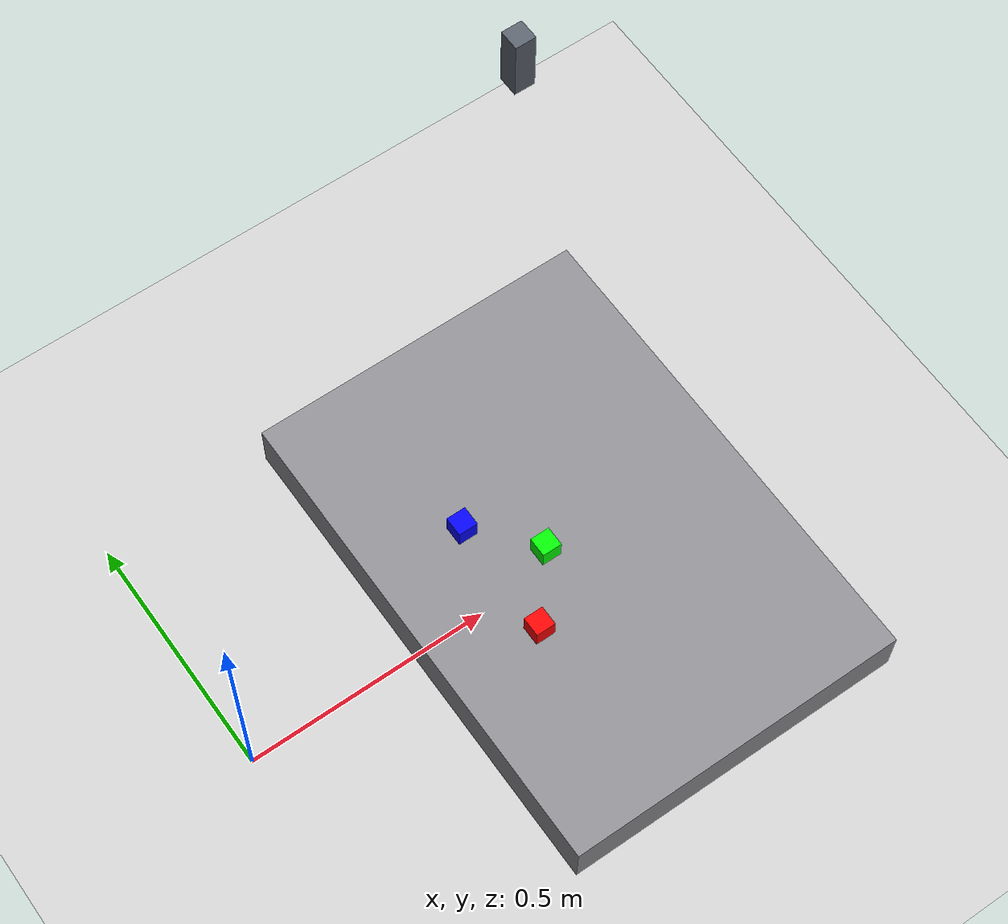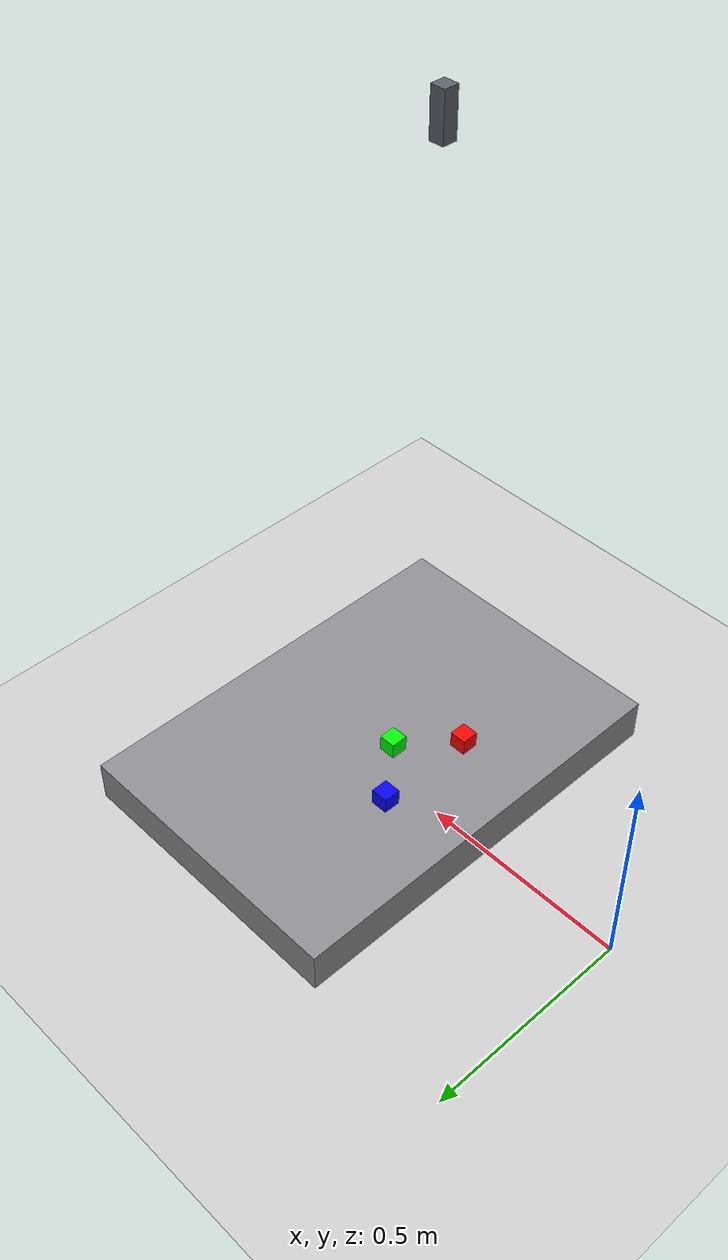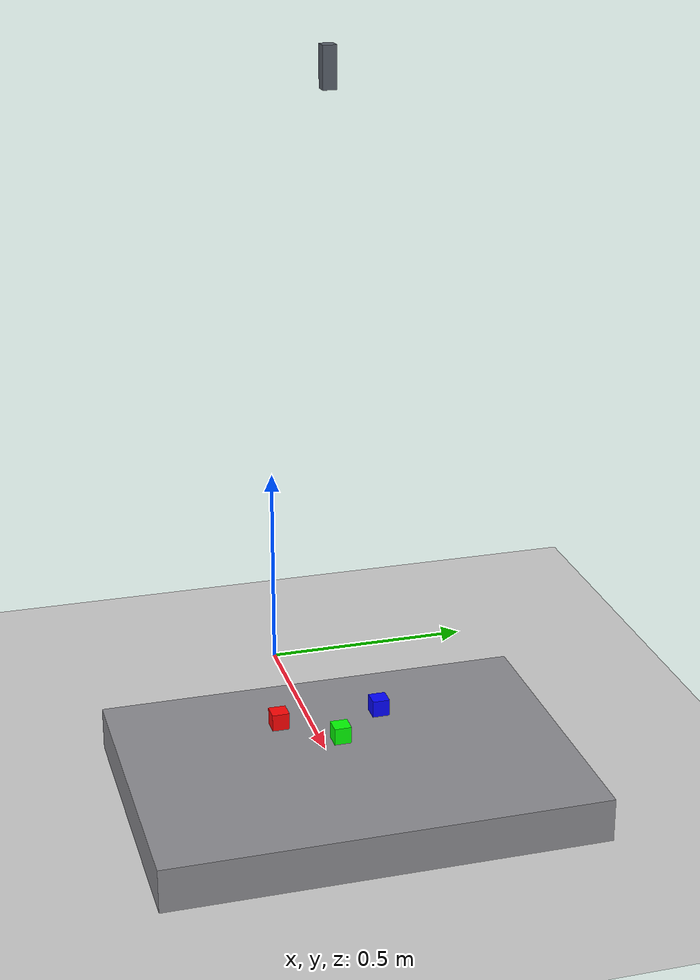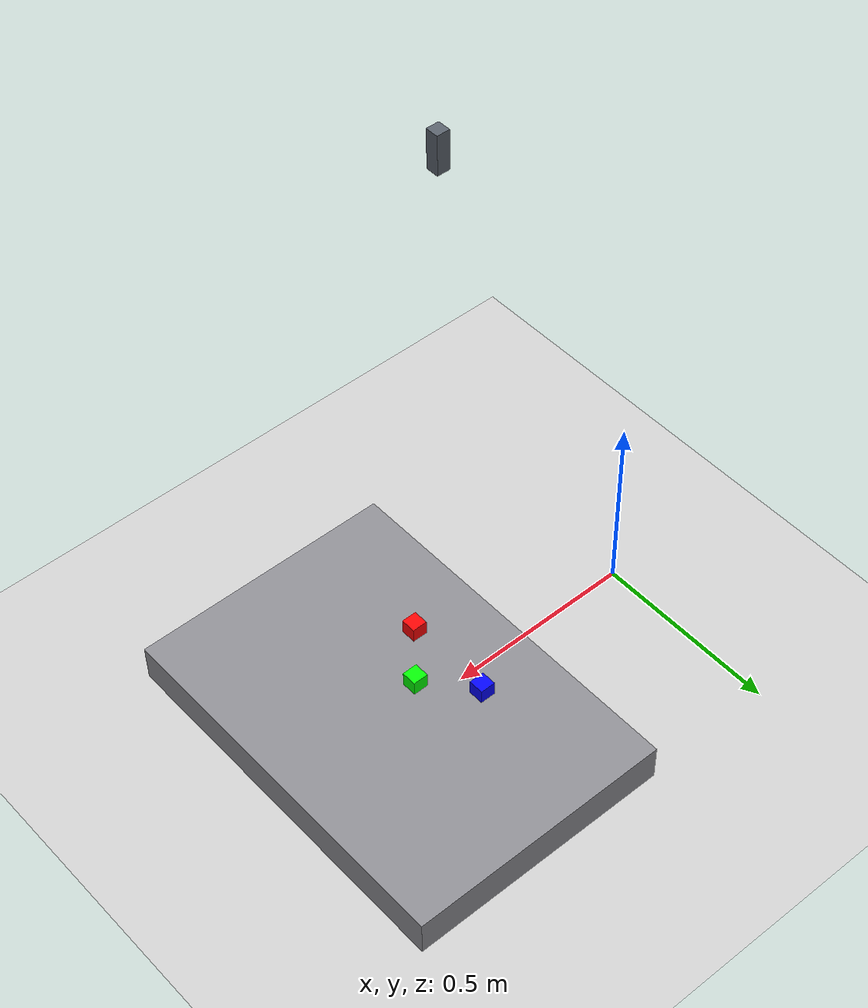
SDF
<?xml version="1.0"?>
<sdf version="1.6">
  <world name="aubo_color_sorting">
    <!-- Contact-assisted grasping for small blocks. -->
    <plugin name="aubo_grasp_attach"
            filename="libaubo_grasp_attach_plugin.so">
      <robot_model>aubo_i5</robot_model>
      <enable_base_lock>false</enable_base_lock>
      <!-- wrist3_Link is guaranteed to survive URDF fixed-joint lumping; the
           fixed gripper base has the same pose in this model. -->
      <palm_link>wrist3_Link</palm_link>
      <object_link>block_link</object_link>
      <max_attach_distance>0.18</max_attach_distance>
      <attach_topic>/sorting/grasp/attach</attach_topic>
      <detach_topic>/sorting/grasp/detach</detach_topic>
      <status_topic>/sorting/grasp/status</status_topic>
    </plugin>
    <include><uri>model://ground_plane</uri></include>
    <include><uri>model://sun</uri></include>

    <!-- Fixed RGB-D camera used by eye-to-hand sorting and visual servo.
         Eye-in-hand modes use the wrist camera instead. -->
    <model name="workspace_camera">
      <static>true</static>
      <pose>0.55 0 1.60 0 1.57079632679 0</pose>
      <link name="workspace_camera_link">
        <collision name="camera_body_collision"><geometry><box><size>0.09 0.03 0.03</size></box></geometry></collision>
        <visual name="camera_body_visual">
          <geometry><box><size>0.09 0.03 0.03</size></box></geometry>
          <material><ambient>0.20 0.22 0.25 1</ambient><diffuse>0.35 0.38 0.42 1</diffuse></material>
        </visual>
        <sensor type="depth" name="workspace_camera_rgbd">
          <pose>0.045 0 0 0 0 0</pose>
          <always_on>true</always_on><visualize>false</visualize><update_rate>20</update_rate>
          <camera name="workspace_camera_sensor">
            <horizontal_fov>1.0471975512</horizontal_fov>
            <image><width>640</width><height>480</height><format>R8G8B8</format></image>
            <clip><near>0.15</near><far>3.0</far></clip>
          </camera>
          <plugin name="workspace_camera_gazebo_ros_openni" filename="libgazebo_ros_openni_kinect.so">
            <cameraName>workspace_camera</cameraName>
            <imageTopicName>color/image_raw</imageTopicName>
            <cameraInfoTopicName>color/camera_info</cameraInfoTopicName>
            <depthImageTopicName>aligned_depth_to_color/image_raw</depthImageTopicName>
            <depthImageCameraInfoTopicName>aligned_depth_to_color/camera_info</depthImageCameraInfoTopicName>
            <pointCloudTopicName>depth/color/points</pointCloudTopicName>
            <frameName>workspace_camera_color_optical_frame</frameName>
            <pointCloudCutoff>0.15</pointCloudCutoff><pointCloudCutoffMax>3.0</pointCloudCutoffMax>
          </plugin>
        </sensor>
      </link>
    </model>

    <!-- Fixed-base AUBO: base_link is at world z=0.  The deliberately low
         table top is therefore z=0.10 in both world and base_link. -->
    <model name="sorting_table">
      <static>true</static>
      <pose>0.70 0 0.0 0 0 0</pose>
      <link name="table_link">
        <collision name="collision">
          <geometry><box><size>0.70 1.00 0.20</size></box></geometry>
        </collision>
        <visual name="visual">
          <geometry><box><size>0.70 1.00 0.20</size></box></geometry>
          <material>
            <ambient>0.45 0.45 0.47 1</ambient>
            <diffuse>0.55 0.55 0.57 1</diffuse>
          </material>
        </visual>
      </link>
    </model>

    <model name="red_block">
      <pose>0.54 -0.12 0.120 0 0 0</pose>
      <link name="block_link">
        <gravity>true</gravity>
        <kinematic>false</kinematic>
        <inertial><mass>0.04</mass><inertia><ixx>0.000011</ixx><iyy>0.000011</iyy><izz>0.000011</izz></inertia></inertial>
        <collision name="collision">
          <max_contacts>20</max_contacts>
          <geometry><box><size>0.04 0.04 0.04</size></box></geometry>
          <surface>
            <friction><ode><mu>20.0</mu><mu2>20.0</mu2></ode></friction>
            <contact><ode><kp>1000000</kp><kd>100</kd><max_vel>0.01</max_vel><min_depth>0.001</min_depth></ode></contact>
          </surface>
        </collision>
        <visual name="visual"><geometry><box><size>0.04 0.04 0.04</size></box></geometry>
          <material><ambient>0.8 0.02 0.02 1</ambient><diffuse>1 0.02 0.02 1</diffuse></material>
        </visual>
      </link>
    </model>

    <model name="green_block">
      <pose>0.64 0 0.120 0 0 0</pose>
      <link name="block_link">
        <gravity>true</gravity>
        <kinematic>false</kinematic>
        <inertial><mass>0.04</mass><inertia><ixx>0.000011</ixx><iyy>0.000011</iyy><izz>0.000011</izz></inertia></inertial>
        <collision name="collision">
          <max_contacts>20</max_contacts>
          <geometry><box><size>0.04 0.04 0.04</size></box></geometry>
          <surface>
            <friction><ode><mu>20.0</mu><mu2>20.0</mu2></ode></friction>
            <contact><ode><kp>1000000</kp><kd>100</kd><max_vel>0.01</max_vel><min_depth>0.001</min_depth></ode></contact>
          </surface>
        </collision>
        <visual name="visual"><geometry><box><size>0.04 0.04 0.04</size></box></geometry>
          <material><ambient>0.02 0.8 0.02 1</ambient><diffuse>0.02 1 0.02 1</diffuse></material>
        </visual>
      </link>
    </model>

    <model name="blue_block">
      <pose>0.54 0.12 0.120 0 0 0</pose>
      <link name="block_link">
        <gravity>true</gravity>
        <kinematic>false</kinematic>
        <inertial><mass>0.04</mass><inertia><ixx>0.000011</ixx><iyy>0.000011</iyy><izz>0.000011</izz></inertia></inertial>
        <collision name="collision">
          <max_contacts>20</max_contacts>
          <geometry><box><size>0.04 0.04 0.04</size></box></geometry>
          <surface>
            <friction><ode><mu>20.0</mu><mu2>20.0</mu2></ode></friction>
            <contact><ode><kp>1000000</kp><kd>100</kd><max_vel>0.01</max_vel><min_depth>0.001</min_depth></ode></contact>
          </surface>
        </collision>
        <visual name="visual"><geometry><box><size>0.04 0.04 0.04</size></box></geometry>
          <material><ambient>0.02 0.02 0.8 1</ambient><diffuse>0.02 0.02 1 1</diffuse></material>
        </visual>
      </link>
    </model>

    <physics name="sorting_physics" type="ode">
      <max_step_size>0.001</max_step_size>
      <real_time_update_rate>1000</real_time_update_rate>
      <ode><solver><type>quick</type><iters>150</iters><sor>1.3</sor></solver></ode>
    </physics>
  </world>
</sdf>
